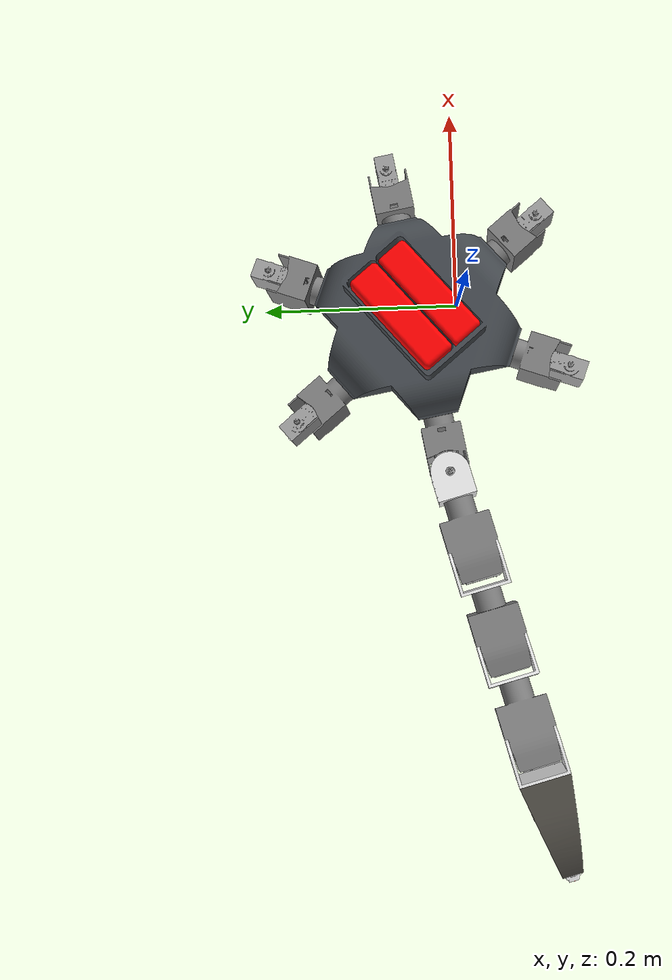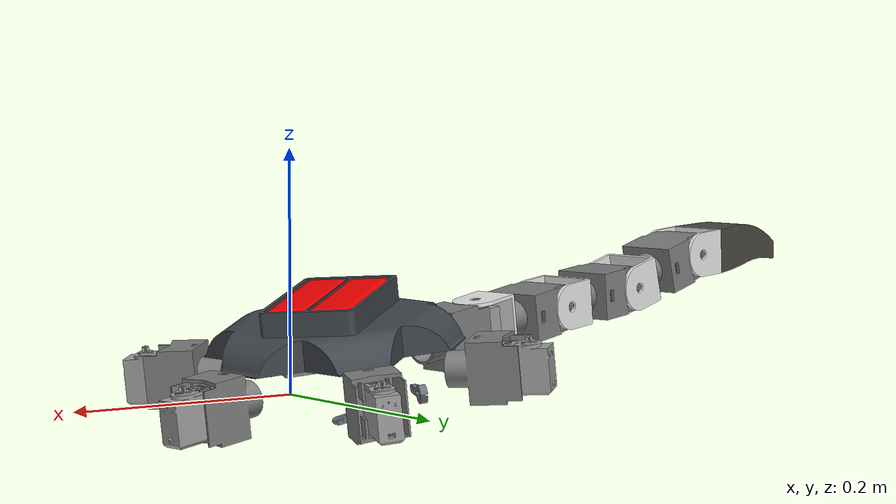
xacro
<?xml version="1.0"?>
<robot name="gg_hexleg"  xmlns:xacro= "http://www.ros.org/wiki/xacro">

<xacro:include filename="robotleg.urdf.xacro"/>

<xacro:include filename="gg_hexleg_ros2_control.xacro"/>

<xacro:include filename="gg_hexleg_gazebo.xacro"/>

<xacro:include filename="gg_hexleg_controller.xacro"/>

</robot>

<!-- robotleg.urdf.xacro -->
<robot name="gg_hexleg"  xmlns:xacro= "http://www.ros.org/wiki/xacro">
<link name="gg_head">
<visual>
<origin xyz="0.051621344240506766843 0.053010748156042328261 0.031335300144267261291" rpy="1.4405500536590931659 0.057400063576623638895 -0.88044400761596874894" />
<geometry>
<mesh filename="file://$(find gg_hex_description)/meshes/part_1.stl"/>
</geometry>
<material name="part_1_material">
<color rgba="0.43921568627450979783 0.47450980392156860699 0.50196078431372548323 1.0"/>
</material>
</visual>
<collision>
<origin xyz="0.051621344240506766843 0.053010748156042328261 0.031335300144267261291" rpy="1.4405500536590931659 0.057400063576623638895 -0.88044400761596874894" />
<geometry>
<mesh filename="file://$(find gg_hex_description)/meshes/part_1.stl"/>
</geometry>
</collision>
<visual>
<origin xyz="0.24930822462423737895 -0.23188657287108196958 0.17590710279953961082" rpy="1.7010425999306999501 -0.057400063576623756856 2.2611486459738250332" />
<geometry>
<mesh filename="file://$(find gg_hex_description)/meshes/mg995_v3.stl"/>
</geometry>
<material name="mg995_v3_material">
<color rgba="0.62745098039215685404 0.62745098039215685404 0.62745098039215685404 1.0"/>
</material>
</visual>
<collision>
<origin xyz="0.24930822462423737895 -0.23188657287108196958 0.17590710279953961082" rpy="1.7010425999306999501 -0.057400063576623756856 2.2611486459738250332" />
<geometry>
<mesh filename="file://$(find gg_hex_description)/meshes/mg995_v3.stl"/>
</geometry>
</collision>
<visual>
<origin xyz="0.028059942751267760719 -0.011883832473664030296 0.037127861301253645143" rpy="1.4405500536590931659 0.057400063576623694406 -0.8804440076159680828" />
<geometry>
<mesh filename="file://$(find gg_hex_description)/meshes/part_1.stl"/>
</geometry>
<material name="part_1_material">
<color rgba="0.43921568627450979783 0.47450980392156860699 0.50196078431372548323 1.0"/>
</material>
</visual>
<collision>
<origin xyz="0.028059942751267760719 -0.011883832473664030296 0.037127861301253645143" rpy="1.4405500536590931659 0.057400063576623694406 -0.8804440076159680828" />
<geometry>
<mesh filename="file://$(find gg_hex_description)/meshes/part_1.stl"/>
</geometry>
</collision>
<visual>
<origin xyz="-0.23791860418567803426 0.3271331351766119111 0.22108507125943277494" rpy="1.4405500536590931659 0.057400063576623819306 -0.88044400761596797178" />
<geometry>
<mesh filename="file://$(find gg_hex_description)/meshes/mg995_v3.stl"/>
</geometry>
<material name="mg995_v3_material">
<color rgba="0.62745098039215685404 0.62745098039215685404 0.62745098039215685404 1.0"/>
</material>
</visual>
<collision>
<origin xyz="-0.23791860418567803426 0.3271331351766119111 0.22108507125943277494" rpy="1.4405500536590931659 0.057400063576623819306 -0.88044400761596797178" />
<geometry>
<mesh filename="file://$(find gg_hex_description)/meshes/mg995_v3.stl"/>
</geometry>
</collision>
<visual>
<origin xyz="-0.24134614674146687152 0.19494688176556104753 0.091377443947044167949" rpy="3.1209428964506775728 0.14077148464596370148 0.1314016564769647788" />
<geometry>
<mesh filename="file://$(find gg_hex_description)/meshes/part_3.stl"/>
</geometry>
<material name="part_3_material">
<color rgba="0.26274509803921569651 0.28235294117647058432 0.30196078431372547213 1.0"/>
</material>
</visual>
<collision>
<origin xyz="-0.24134614674146687152 0.19494688176556104753 0.091377443947044167949" rpy="3.1209428964506775728 0.14077148464596370148 0.1314016564769647788" />
<geometry>
<mesh filename="file://$(find gg_hex_description)/meshes/part_3.stl"/>
</geometry>
</collision>
<visual>
<origin xyz="-0.11135554047862114557 -0.30364316507707583837 0.22840621136175429107" rpy="1.6859679721287927912 0.083706135209929574681 1.2225239163153844846" />
<geometry>
<mesh filename="file://$(find gg_hex_description)/meshes/mg995_v3.stl"/>
</geometry>
<material name="mg995_v3_material">
<color rgba="0.62745098039215685404 0.62745098039215685404 0.62745098039215685404 1.0"/>
</material>
</visual>
<collision>
<origin xyz="-0.11135554047862114557 -0.30364316507707583837 0.22840621136175429107" rpy="1.6859679721287927912 0.083706135209929574681 1.2225239163153844846" />
<geometry>
<mesh filename="file://$(find gg_hex_description)/meshes/mg995_v3.stl"/>
</geometry>
</collision>
<visual>
<origin xyz="-0.34013314669135608082 -0.44760516604569011712 -0.13699588960249398095" rpy="1.6859679721287925691 0.083706135209929435903 1.2225239163153851507" />
<geometry>
<mesh filename="file://$(find gg_hex_description)/meshes/part_13.stl"/>
</geometry>
<material name="part_13_material">
<color rgba="0.49803921568627451677 0.49803921568627451677 0.49803921568627451677 1.0"/>
</material>
</visual>
<collision>
<origin xyz="-0.34013314669135608082 -0.44760516604569011712 -0.13699588960249398095" rpy="1.6859679721287925691 0.083706135209929435903 1.2225239163153851507" />
<geometry>
<mesh filename="file://$(find gg_hex_description)/meshes/part_13.stl"/>
</geometry>
</collision>
<visual>
<origin xyz="0.36635857532213866872 0.11937987335875810402 0.14599697846727133221" rpy="1.586099347153653083 -0.14144816844228136343 -2.9721788419495531741" />
<geometry>
<mesh filename="file://$(find gg_hex_description)/meshes/mg995_v3.stl"/>
</geometry>
<material name="mg995_v3_material">
<color rgba="0.62745098039215685404 0.62745098039215685404 0.62745098039215685404 1.0"/>
</material>
</visual>
<collision>
<origin xyz="0.36635857532213866872 0.11937987335875810402 0.14599697846727133221" rpy="1.586099347153653083 -0.14144816844228136343 -2.9721788419495531741" />
<geometry>
<mesh filename="file://$(find gg_hex_description)/meshes/mg995_v3.stl"/>
</geometry>
</collision>
<visual>
<origin xyz="0.0021200981765233800624 0.10478672579896859685 -0.0042859684635764925403" rpy="-1.586099347153653083 0.14144816844228147446 0.16941381164024071904" />
<geometry>
<mesh filename="file://$(find gg_hex_description)/meshes/part_1.stl"/>
</geometry>
<material name="part_1_material">
<color rgba="0.43921568627450979783 0.47450980392156860699 0.50196078431372548323 1.0"/>
</material>
</visual>
<collision>
<origin xyz="0.0021200981765233800624 0.10478672579896859685 -0.0042859684635764925403" rpy="-1.586099347153653083 0.14144816844228147446 0.16941381164024071904" />
<geometry>
<mesh filename="file://$(find gg_hex_description)/meshes/part_1.stl"/>
</geometry>
</collision>
<visual>
<origin xyz="-0.31616160588594660608 0.52886558676093764486 -0.17862106689598056253" rpy="1.4405500536590913896 0.0574000635766236042 -0.88044400761596797178" />
<geometry>
<mesh filename="file://$(find gg_hex_description)/meshes/part_13.stl"/>
</geometry>
<material name="part_13_material">
<color rgba="0.49803921568627451677 0.49803921568627451677 0.49803921568627451677 1.0"/>
</material>
</visual>
<collision>
<origin xyz="-0.31616160588594660608 0.52886558676093764486 -0.17862106689598056253" rpy="1.4405500536590913896 0.0574000635766236042 -0.88044400761596797178" />
<geometry>
<mesh filename="file://$(find gg_hex_description)/meshes/part_13.stl"/>
</geometry>
</collision>
<visual>
<origin xyz="0.24284195062237590168 0.51188833448764381462 -0.25495981063930150956" rpy="1.4556246814610005469 -0.083706135209929574681 -1.9190687372744086314" />
<geometry>
<mesh filename="file://$(find gg_hex_description)/meshes/part_13.stl"/>
</geometry>
<material name="part_13_material">
<color rgba="0.49803921568627451677 0.49803921568627451677 0.49803921568627451677 1.0"/>
</material>
</visual>
<collision>
<origin xyz="0.24284195062237590168 0.51188833448764381462 -0.25495981063930150956" rpy="1.4556246814610005469 -0.083706135209929574681 -1.9190687372744086314" />
<geometry>
<mesh filename="file://$(find gg_hex_description)/meshes/part_13.stl"/>
</geometry>
</collision>
<visual>
<origin xyz="0.23098258315372460769 -0.13951832807913636114 -0.040367500661640506876" rpy="-3.1209428964506362725 -0.14077148464595770627 -3.0101909971131233235" />
<geometry>
<mesh filename="file://$(find gg_hex_description)/meshes/part_5.stl"/>
</geometry>
<material name="part_5_material">
<color rgba="1 0 0 1.0"/>
</material>
</visual>
<collision>
<origin xyz="0.23098258315372460769 -0.13951832807913636114 -0.040367500661640506876" rpy="-3.1209428964506362725 -0.14077148464595770627 -3.0101909971131233235" />
<geometry>
<mesh filename="file://$(find gg_hex_description)/meshes/part_5.stl"/>
</geometry>
</collision>
<visual>
<origin xyz="-0.065488054194388606311 0.093222119994802191134 0.0054812023440739439384" rpy="-1.6859679721287934573 -0.083706135209929408147 -1.9190687372744084094" />
<geometry>
<mesh filename="file://$(find gg_hex_description)/meshes/part_1.stl"/>
</geometry>
<material name="part_1_material">
<color rgba="0.43921568627450979783 0.47450980392156860699 0.50196078431372548323 1.0"/>
</material>
</visual>
<collision>
<origin xyz="-0.065488054194388606311 0.093222119994802191134 0.0054812023440739439384" rpy="-1.6859679721287934573 -0.083706135209929408147 -1.9190687372744084094" />
<geometry>
<mesh filename="file://$(find gg_hex_description)/meshes/part_1.stl"/>
</geometry>
</collision>
<visual>
<origin xyz="-0.35496895488357926851 -0.024133311053229015986 0.25099519559170097027" rpy="1.555493306436140255 0.14144816844228141894 0.16941381164024019168" />
<geometry>
<mesh filename="file://$(find gg_hex_description)/meshes/mg995_v3.stl"/>
</geometry>
<material name="mg995_v3_material">
<color rgba="0.62745098039215685404 0.62745098039215685404 0.62745098039215685404 1.0"/>
</material>
</visual>
<collision>
<origin xyz="-0.35496895488357926851 -0.024133311053229015986 0.25099519559170097027" rpy="1.555493306436140255 0.14144816844228141894 0.16941381164024019168" />
<geometry>
<mesh filename="file://$(find gg_hex_description)/meshes/mg995_v3.stl"/>
</geometry>
</collision>
<visual>
<origin xyz="-0.015986808130404955852 0.041446142351875707444 0.041102470951917671749" rpy="1.4556246814610005469 -0.083706135209929657948 -1.9190687372744088535" />
<geometry>
<mesh filename="file://$(find gg_hex_description)/meshes/part_1.stl"/>
</geometry>
<material name="part_1_material">
<color rgba="0.99215686274509806708 0.0039215686274509803377 0.0039215686274509803377 1.0"/>
</material>
</visual>
<collision>
<origin xyz="-0.015986808130404955852 0.041446142351875707444 0.041102470951917671749" rpy="1.4556246814610005469 -0.083706135209929657948 -1.9190687372744088535" />
<geometry>
<mesh filename="file://$(find gg_hex_description)/meshes/part_1.stl"/>
</geometry>
</collision>
<visual>
<origin xyz="0.2188704098169642065 -0.46458241831897900687 -0.21333463334581487247" rpy="1.7010425999307001721 -0.057400063576623673589 2.2611486459738250332" />
<geometry>
<mesh filename="file://$(find gg_hex_description)/meshes/part_13.stl"/>
</geometry>
<material name="part_13_material">
<color rgba="0.49803921568627451677 0.49803921568627451677 0.49803921568627451677 1.0"/>
</material>
</visual>
<collision>
<origin xyz="0.2188704098169642065 -0.46458241831897900687 -0.21333463334581487247" rpy="1.7010425999307001721 -0.057400063576623673589 2.2611486459738250332" />
<geometry>
<mesh filename="file://$(find gg_hex_description)/meshes/part_13.stl"/>
</geometry>
</collision>
<visual>
<origin xyz="-0.60764915454281442919 0.049118836494266453208 -0.11963910637757604882" rpy="1.555493306436140033 0.14144816844228161323 0.16941381164024058026" />
<geometry>
<mesh filename="file://$(find gg_hex_description)/meshes/part_13.stl"/>
</geometry>
<material name="part_13_material">
<color rgba="0.49803921568627451677 0.49803921568627451677 0.49803921568627451677 1.0"/>
</material>
</visual>
<collision>
<origin xyz="-0.60764915454281442919 0.049118836494266453208 -0.11963910637757604882" rpy="1.555493306436140033 0.14144816844228161323 0.16941381164024058026" />
<geometry>
<mesh filename="file://$(find gg_hex_description)/meshes/part_13.stl"/>
</geometry>
</collision>
<visual>
<origin xyz="-0.12582845017529004084 0.33109747017895518884 0.17013138973513960983" rpy="-0.11822614426811474397 -0.079322993236811564777 -1.88155984835167156" />
<geometry>
<mesh filename="file://$(find gg_hex_description)/meshes/part_5.stl"/>
</geometry>
<material name="part_5_material">
<color rgba="1 0 0 1.0"/>
</material>
</visual>
<collision>
<origin xyz="-0.12582845017529004084 0.33109747017895518884 0.17013138973513960983" rpy="-0.11822614426811474397 -0.079322993236811564777 -1.88155984835167156" />
<geometry>
<mesh filename="file://$(find gg_hex_description)/meshes/part_5.stl"/>
</geometry>
</collision>
<visual>
<origin xyz="0.12274516091718121191 0.3988897273826046419 0.16858596269721801142" rpy="1.4556246814610005469 -0.083706135209929657948 -1.9190687372744088535" />
<geometry>
<mesh filename="file://$(find gg_hex_description)/meshes/mg995_v3.stl"/>
</geometry>
<material name="mg995_v3_material">
<color rgba="0.62745098039215685404 0.62745098039215685404 0.62745098039215685404 1.0"/>
</material>
</visual>
<collision>
<origin xyz="0.12274516091718121191 0.3988897273826046419 0.16858596269721801142" rpy="1.4556246814610005469 -0.083706135209929657948 -1.9190687372744088535" />
<geometry>
<mesh filename="file://$(find gg_hex_description)/meshes/mg995_v3.stl"/>
</geometry>
</collision>
<visual>
<origin xyz="-0.083594960501316761814 0.029881536547709197649 0.05086964175956806139" rpy="1.7010425999307001721 -0.0574000635766236042 2.2611486459738250332" />
<geometry>
<mesh filename="file://$(find gg_hex_description)/meshes/part_1.stl"/>
</geometry>
<material name="part_1_material">
<color rgba="0.43921568627450979783 0.47450980392156860699 0.50196078431372548323 1.0"/>
</material>
</visual>
<collision>
<origin xyz="-0.083594960501316761814 0.029881536547709197649 0.05086964175956806139" rpy="1.7010425999307001721 -0.0574000635766236042 2.2611486459738250332" />
<geometry>
<mesh filename="file://$(find gg_hex_description)/meshes/part_1.stl"/>
</geometry>
</collision>
<visual>
<origin xyz="-0.039548209619643982793 -0.023448438277830684073 0.046895032108904034784" rpy="1.4405500536590931659 0.05740006357662379155 -0.88044400761596852689" />
<geometry>
<mesh filename="file://$(find gg_hex_description)/meshes/part_1.stl"/>
</geometry>
<material name="part_1_material">
<color rgba="0.43921568627450979783 0.47450980392156860699 0.50196078431372548323 1.0"/>
</material>
</visual>
<collision>
<origin xyz="-0.039548209619643982793 -0.023448438277830684073 0.046895032108904034784" rpy="1.4405500536590931659 0.05740006357662379155 -0.88044400761596852689" />
<geometry>
<mesh filename="file://$(find gg_hex_description)/meshes/part_1.stl"/>
</geometry>
</collision>
<visual>
<origin xyz="0.51035795847382992019 0.015164331947687702262 -0.27231659386421869229" rpy="1.586099347153653305 -0.14144816844228130792 -2.9721788419495531741" />
<geometry>
<mesh filename="file://$(find gg_hex_description)/meshes/part_13.stl"/>
</geometry>
<material name="part_13_material">
<color rgba="0.49803921568627451677 0.49803921568627451677 0.49803921568627451677 1.0"/>
</material>
</visual>
<collision>
<origin xyz="0.51035795847382992019 0.015164331947687702262 -0.27231659386421869229" rpy="1.586099347153653305 -0.14144816844228130792 -2.9721788419495531741" />
<geometry>
<mesh filename="file://$(find gg_hex_description)/meshes/part_13.stl"/>
</geometry>
</collision>
<inertial>
<origin xyz="-0.017380239929629379136 0.041171236272134252576 0.028935532899514483651" rpy="0 0 0"/>
<mass value="1.2784264529325646276" />
<inertia ixx="0.0034132895918605808509" ixy="-5.3764388986876789469e-05"  ixz="0.00025685852917272473592" iyy="0.0033989023577191994005" iyz="7.6024909262982007913e-05" izz="0.0053574656371752644307" />
</inertial>
</link>

<link name="gg_leg_base">
<visual>
<origin xyz="-0.30299741173027916474 -0.21949999999999889044 -0.015497759461402856734" rpy="-1.424022484142395695e-16 1.446146476208444419e-16 1.4745670292590377029e-16" />
<geometry>
<mesh filename="file://$(find gg_hex_description)/meshes/part_11.stl"/>
</geometry>
<material name="part_11_material">
<color rgba="0.49803921568627451677 0.49803921568627451677 0.49803921568627451677 1.0"/>
</material>
</visual>
<collision>
<origin xyz="-0.30299741173027916474 -0.21949999999999889044 -0.015497759461402856734" rpy="-1.424022484142395695e-16 1.446146476208444419e-16 1.4745670292590377029e-16" />
<geometry>
<mesh filename="file://$(find gg_hex_description)/meshes/part_11.stl"/>
</geometry>
</collision>
<visual>
<origin xyz="-0.13214254961996321769 -0.010002240538597134689 -0.045000000000000005274" rpy="1.570796326794896558 1.3501169211375934332e-18 6.1966197050525218214e-17" />
<geometry>
<mesh filename="file://$(find gg_hex_description)/meshes/part_6.stl"/>
</geometry>
<material name="part_6_material">
<color rgba="0.91764705882352937127 0.91764705882352937127 0.91764705882352937127 1.0"/>
</material>
</visual>
<collision>
<origin xyz="-0.13214254961996321769 -0.010002240538597134689 -0.045000000000000005274" rpy="1.570796326794896558 1.3501169211375934332e-18 6.1966197050525218214e-17" />
<geometry>
<mesh filename="file://$(find gg_hex_description)/meshes/part_6.stl"/>
</geometry>
</collision>
<visual>
<origin xyz="-0.30390026077865495147 0.17899999999999907652 -0.015497759461402801223" rpy="-9.0132880915255560884e-17 4.1992707746635408206e-16 1.5176582427408576879e-16" />
<geometry>
<mesh filename="file://$(find gg_hex_description)/meshes/mg995_v3.stl"/>
</geometry>
<material name="mg995_v3_material">
<color rgba="0.62745098039215685404 0.62745098039215685404 0.62745098039215685404 1.0"/>
</material>
</visual>
<collision>
<origin xyz="-0.30390026077865495147 0.17899999999999907652 -0.015497759461402801223" rpy="-9.0132880915255560884e-17 4.1992707746635408206e-16 1.5176582427408576879e-16" />
<geometry>
<mesh filename="file://$(find gg_hex_description)/meshes/mg995_v3.stl"/>
</geometry>
</collision>
<inertial>
<origin xyz="-0.063706673597089633065 -0.00036253314902457962985 -0.025527945142445589849" rpy="0 0 0"/>
<mass value="0.084196217898659775347" />
<inertia ixx="2.7957377169670302763e-05" ixy="-7.7137426145840274612e-07"  ixz="1.8403677325149005684e-07" iyy="9.7805049098282463029e-05" iyz="3.2099813099597303221e-09" izz="9.8669146380223277451e-05" />
</inertial>
</link>

<link name="gg_leg_middle">
<visual>
<origin xyz="-0.30299741173027872065 -0.010002240538597016728 -0.24499999999999916289" rpy="1.570796326794896336 -1.2824431019612260692e-16 -2.6490383195422754462e-16" />
<geometry>
<mesh filename="file://$(find gg_hex_description)/meshes/part_11.stl"/>
</geometry>
<material name="part_11_material">
<color rgba="0.49803921568627451677 0.49803921568627451677 0.49803921568627451677 1.0"/>
</material>
</visual>
<collision>
<origin xyz="-0.30299741173027872065 -0.010002240538597016728 -0.24499999999999916289" rpy="1.570796326794896336 -1.2824431019612260692e-16 -2.6490383195422754462e-16" />
<geometry>
<mesh filename="file://$(find gg_hex_description)/meshes/part_11.stl"/>
</geometry>
</collision>
<visual>
<origin xyz="-0.13214254961996313442 -0.010002240538597106934 -0.045000000000000019151" rpy="1.570796326794896558 -3.2668120226596032335e-17 -5.00709582548309429e-18" />
<geometry>
<mesh filename="file://$(find gg_hex_description)/meshes/part_6.stl"/>
</geometry>
<material name="part_6_material">
<color rgba="0.91764705882352937127 0.91764705882352937127 0.91764705882352937127 1.0"/>
</material>
</visual>
<collision>
<origin xyz="-0.13214254961996313442 -0.010002240538597106934 -0.045000000000000019151" rpy="1.570796326794896558 -3.2668120226596032335e-17 -5.00709582548309429e-18" />
<geometry>
<mesh filename="file://$(find gg_hex_description)/meshes/part_6.stl"/>
</geometry>
</collision>
<visual>
<origin xyz="-0.30390026077865450738 -0.010002240538597051422 0.15349999999999916489" rpy="1.570796326794896336 -1.2824431019612260692e-16 -2.6490383195422754462e-16" />
<geometry>
<mesh filename="file://$(find gg_hex_description)/meshes/mg995_v3.stl"/>
</geometry>
<material name="mg995_v3_material">
<color rgba="0.62745098039215685404 0.62745098039215685404 0.62745098039215685404 1.0"/>
</material>
</visual>
<collision>
<origin xyz="-0.30390026077865450738 -0.010002240538597051422 0.15349999999999916489" rpy="1.570796326794896336 -1.2824431019612260692e-16 -2.6490383195422754462e-16" />
<geometry>
<mesh filename="file://$(find gg_hex_description)/meshes/mg995_v3.stl"/>
</geometry>
</collision>
<inertial>
<origin xyz="-0.063706673597089452654 -3.8498478453913315421e-06 -0.025894328139315581083" rpy="0 0 0"/>
<mass value="0.084196217898659775347" />
<inertia ixx="2.7955415541966066893e-05" ixy="-1.3492807390209368114e-08"  ixz="-6.0083029559715084163e-07" iyy="0.00010348466964737573206" iyz="-2.2291674578708601848e-09" izz="9.2987564203425321927e-05" />
</inertial>
</link>

<link name="gg_leg_middle_2">
<visual>
<origin xyz="-0.30299741173027960883 -0.010002240538597016728 -0.24499999999999957923" rpy="1.5707963267948961139 -2.0081311255025311175e-17 -1.9513152290148020623e-16" />
<geometry>
<mesh filename="file://$(find gg_hex_description)/meshes/part_11.stl"/>
</geometry>
<material name="part_11_material">
<color rgba="0.49803921568627451677 0.49803921568627451677 0.49803921568627451677 1.0"/>
</material>
</visual>
<collision>
<origin xyz="-0.30299741173027960883 -0.010002240538597016728 -0.24499999999999957923" rpy="1.5707963267948961139 -2.0081311255025311175e-17 -1.9513152290148020623e-16" />
<geometry>
<mesh filename="file://$(find gg_hex_description)/meshes/part_11.stl"/>
</geometry>
</collision>
<visual>
<origin xyz="-0.13214254961996324544 -0.010002240538597106934 -0.044999999999999991396" rpy="1.570796326794896558 2.1496128004418064195e-17 -7.5547169911992107881e-17" />
<geometry>
<mesh filename="file://$(find gg_hex_description)/meshes/part_6.stl"/>
</geometry>
<material name="part_6_material">
<color rgba="0.91764705882352937127 0.91764705882352937127 0.91764705882352937127 1.0"/>
</material>
</visual>
<collision>
<origin xyz="-0.13214254961996324544 -0.010002240538597106934 -0.044999999999999991396" rpy="1.570796326794896558 2.1496128004418064195e-17 -7.5547169911992107881e-17" />
<geometry>
<mesh filename="file://$(find gg_hex_description)/meshes/part_6.stl"/>
</geometry>
</collision>
<visual>
<origin xyz="-0.30390026077865495147 -0.010002240538597075709 0.15349999999999960898" rpy="1.5707963267948961139 2.204974361174864627e-17 3.1085587477607464825e-17" />
<geometry>
<mesh filename="file://$(find gg_hex_description)/meshes/mg995_v3.stl"/>
</geometry>
<material name="mg995_v3_material">
<color rgba="0.62745098039215685404 0.62745098039215685404 0.62745098039215685404 1.0"/>
</material>
</visual>
<collision>
<origin xyz="-0.30390026077865495147 -0.010002240538597075709 0.15349999999999960898" rpy="1.5707963267948961139 2.204974361174864627e-17 3.1085587477607464825e-17" />
<geometry>
<mesh filename="file://$(find gg_hex_description)/meshes/mg995_v3.stl"/>
</geometry>
</collision>
<inertial>
<origin xyz="-0.063706673597089522043 -3.8498478453747559544e-06 -0.025894328139315532511" rpy="0 0 0"/>
<mass value="0.084196217898659775347" />
<inertia ixx="2.7955415541966175313e-05" ixy="-1.3492807390161418109e-08"  ixz="-6.0083029559707513806e-07" iyy="0.00010348466964737567785" iyz="-2.2291674578784503941e-09" izz="9.2987564203425430347e-05" />
</inertial>
</link>

<link name="gg_leg_tip">
<visual>
<origin xyz="-0.13214254961996307891 -0.010002240538597120811 -0.045000000000000005274" rpy="1.570796326794896558 3.6596985696957093536e-17 5.4610628371499495481e-18" />
<geometry>
<mesh filename="file://$(find gg_hex_description)/meshes/part_6.stl"/>
</geometry>
<material name="part_6_material">
<color rgba="0.91764705882352937127 0.91764705882352937127 0.91764705882352937127 1.0"/>
</material>
</visual>
<collision>
<origin xyz="-0.13214254961996307891 -0.010002240538597120811 -0.045000000000000005274" rpy="1.570796326794896558 3.6596985696957093536e-17 5.4610628371499495481e-18" />
<geometry>
<mesh filename="file://$(find gg_hex_description)/meshes/part_6.stl"/>
</geometry>
</collision>
<visual>
<origin xyz="-0.12259449000000000041 0.0098031712025948083977 -0.025281761415826442541" rpy="-1.5707963267948858999 1.5707963267948956698 0" />
<geometry>
<mesh filename="file://$(find gg_hex_description)/meshes/led_3mm_trans.stl"/>
</geometry>
<material name="led_3mm_trans_material">
<color rgba="1 1 1 1.0"/>
</material>
</visual>
<collision>
<origin xyz="-0.12259449000000000041 0.0098031712025948083977 -0.025281761415826442541" rpy="-1.5707963267948858999 1.5707963267948956698 0" />
<geometry>
<mesh filename="file://$(find gg_hex_description)/meshes/led_3mm_trans.stl"/>
</geometry>
</collision>
<visual>
<origin xyz="-0.12029448999999992065 0.010865472711805261585 -0.024348211468834202176" rpy="3.1415926535897900074 2.6291881111383091798e-18 -1.5707963267949041075" />
<geometry>
<mesh filename="file://$(find gg_hex_description)/meshes/pulsador.stl"/>
</geometry>
<material name="pulsador_material">
<color rgba="1 0 0 1.0"/>
</material>
</visual>
<collision>
<origin xyz="-0.12029448999999992065 0.010865472711805261585 -0.024348211468834202176" rpy="3.1415926535897900074 2.6291881111383091798e-18 -1.5707963267949041075" />
<geometry>
<mesh filename="file://$(find gg_hex_description)/meshes/pulsador.stl"/>
</geometry>
</collision>
<visual>
<origin xyz="-0.026494489999999870644 0.14717946631848957684 -0.050978735407716781192" rpy="3.141592653589793116 1.2178184660667814995e-16 1.570796326794896336" />
<geometry>
<mesh filename="file://$(find gg_hex_description)/meshes/part_25.stl"/>
</geometry>
<material name="part_25_material">
<color rgba="0.30196078431372547213 0.29019607843137257275 0.26274509803921569651 1.0"/>
</material>
</visual>
<collision>
<origin xyz="-0.026494489999999870644 0.14717946631848957684 -0.050978735407716781192" rpy="3.141592653589793116 1.2178184660667814995e-16 1.570796326794896336" />
<geometry>
<mesh filename="file://$(find gg_hex_description)/meshes/part_25.stl"/>
</geometry>
</collision>
<inertial>
<origin xyz="-0.058600447713097643387 0.00030798747790674414412 -0.025499135322571492984" rpy="0 0 0"/>
<mass value="0.15555503524263536441" />
<inertia ixx="4.2100962384746106956e-05" ixy="5.2877209940367492948e-06"  ixz="2.061524301821244749e-07" iyy="0.00015940278081236371579" iyz="2.8650165663824764688e-08" izz="0.00015063387305897966376" />
</inertial>
</link>

<joint name="j4" type="revolute">
<origin xyz="-0.093900260629644405341 -2.2405385970841740217e-06 4.1633363423443370266e-17" rpy="-1.62648070406583883e-15 -1.1122346859318055332e-15 -0.19376785937766785595" />
<parent link="gg_leg_middle_2" />
<child link="gg_leg_tip" />
<axis xyz="0 0 1"/>
<limit effort="1" velocity="20" lower="-1.570796326794896558" upper="1.570796326794896558"/>
<joint_properties friction="0.0"/>
</joint>

<joint name="j3" type="revolute">
<origin xyz="-0.093900260629644183297 -2.2405385970772351278e-06 -1.6653345369377348106e-16" rpy="-7.7495130457178476669e-16 -1.4439197049880304714e-15 0.1480461583998518571" />
<parent link="gg_leg_middle" />
<child link="gg_leg_middle_2" />
<axis xyz="0 0 1"/>
<limit effort="1" velocity="20" lower="-1.570796326794896558" upper="1.570796326794896558"/>
<joint_properties friction="0.0"/>
</joint>

<joint name="j2" type="revolute">
<origin xyz="-0.093900260629644377586 0.025499999999999876932 -0.02549775946140290378" rpy="-1.57079632679489678 -0.044465289011663966523 -4.5195293191966402481e-15" />
<parent link="gg_leg_base" />
<child link="gg_leg_middle" />
<axis xyz="0 0 1"/>
<limit effort="1" velocity="20" lower="-1.570796326794896558" upper="1.570796326794896558"/>
<joint_properties friction="0.0"/>
</joint>

<joint name="j1" type="revolute">
<origin xyz="-0.17268137135316899422 0.014808619510366237415 0.069289353645965362505" rpy="-0.0028336154305724425492 0.14224003555812803068 0.25756252813228280862" />
<parent link="gg_head" />
<child link="gg_leg_base" />
<axis xyz="0 0 1"/>
<limit effort="1" velocity="20" lower="-1.570796326794896558" upper="1.570796326794896558"/>
<joint_properties friction="0.0"/>
</joint>

</robot>
